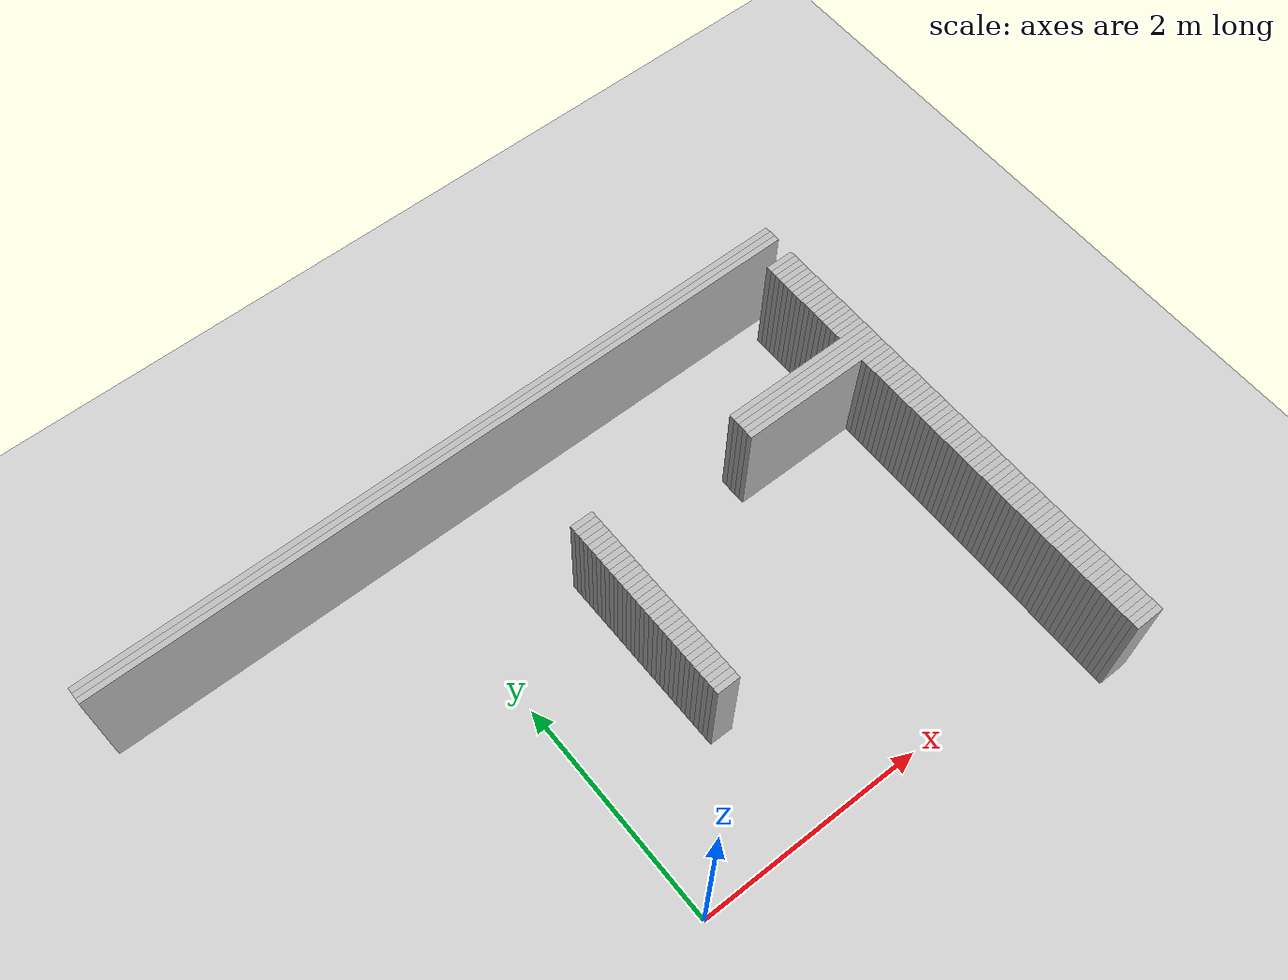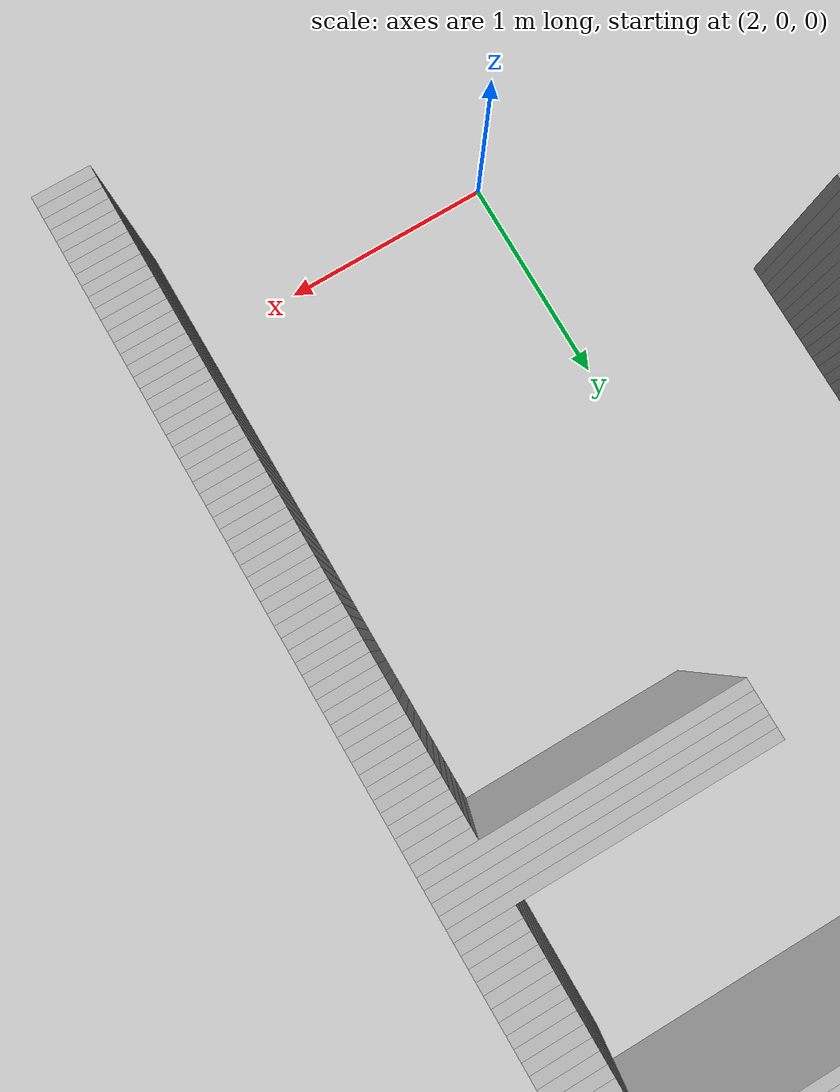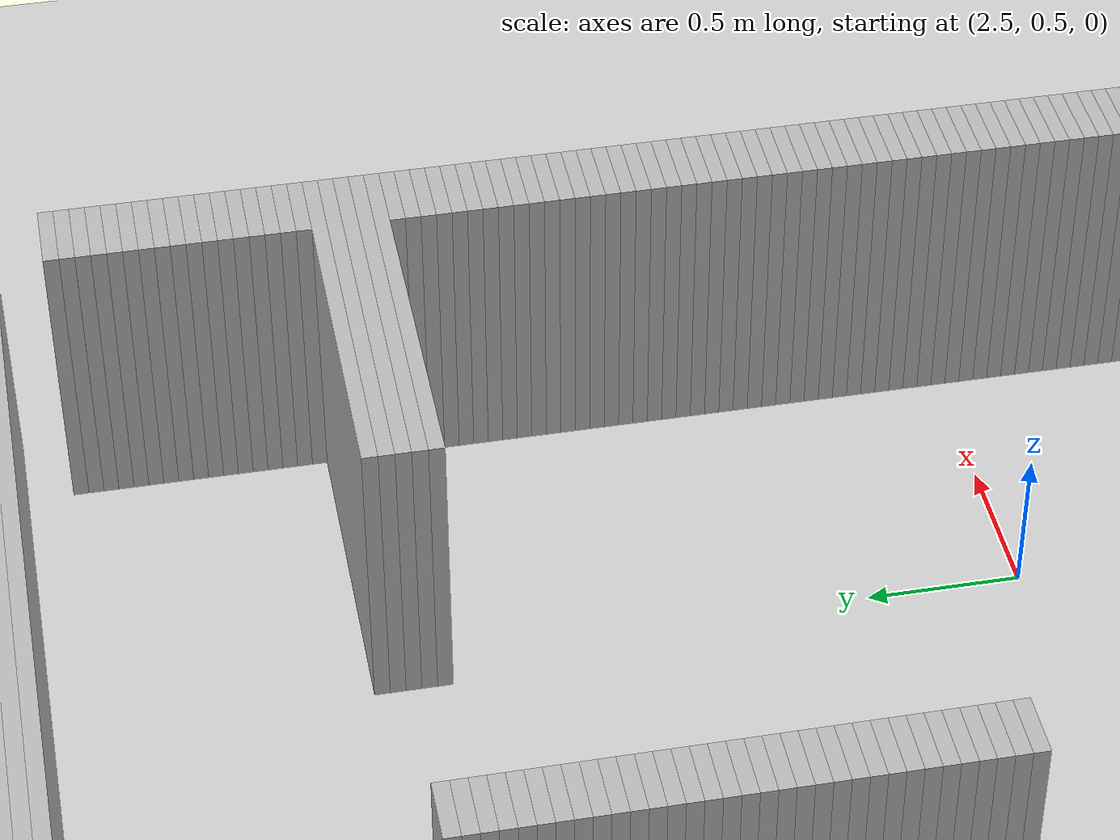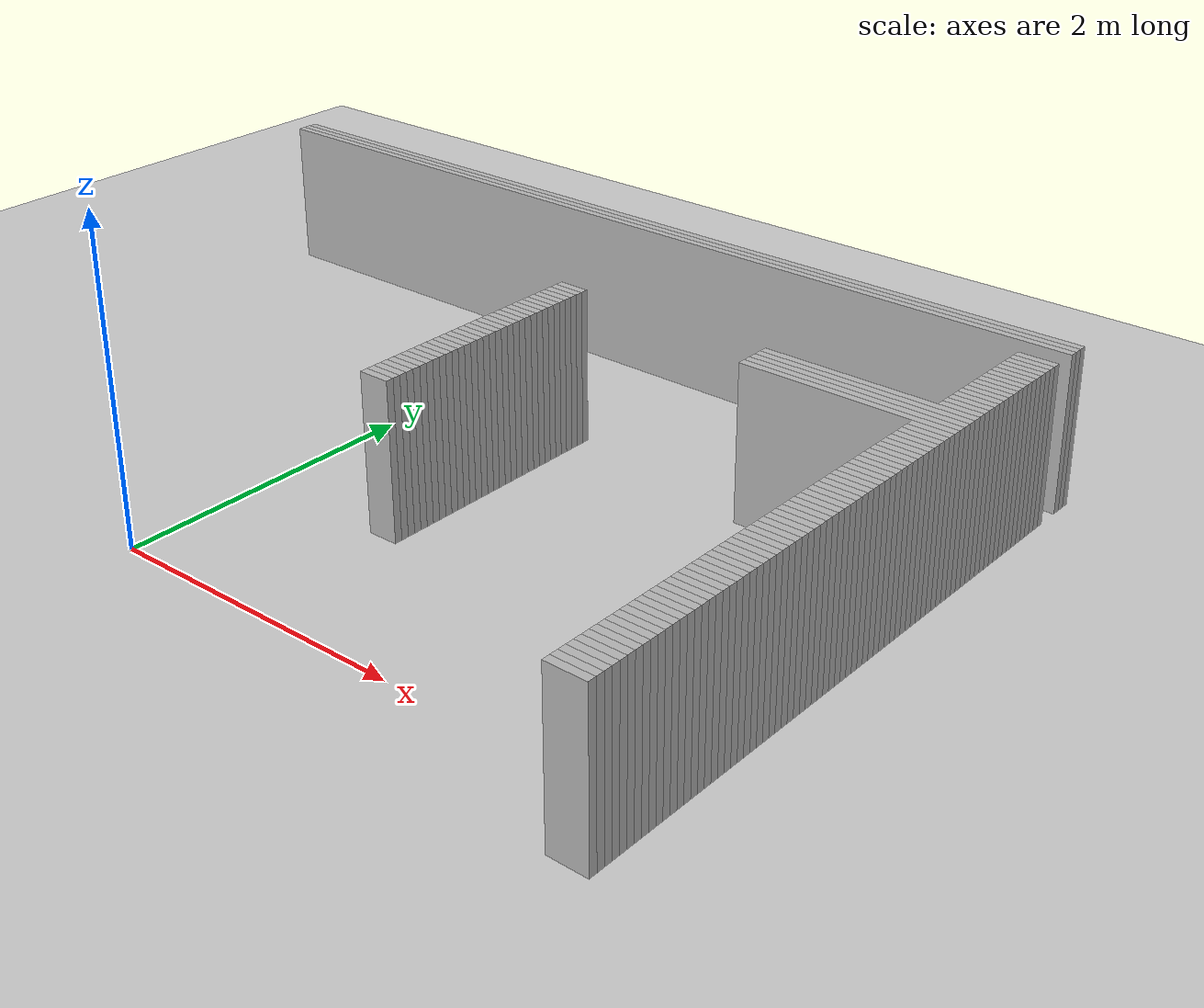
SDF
<sdf version="1.6">
 <world name="maze">
  <include><uri>model://ground_plane</uri></include>
  <include><uri>model://sun</uri></include>
  <model name="wall_24_0">
   <static>true</static>
   <pose>0.5750000000000001 3.75 0.5 0 0 0</pose>
   <link name="link">
    <collision name="collision">
     <geometry><box><size>6.300000000000001 0.05 1.0</size></box></geometry>
    </collision>
    <visual name="visual"><geometry><box><size>6.300000000000001 0.05 1.0</size></box></geometry></visual>
   </link>
  </model>
  <model name="wall_24_1">
   <static>true</static>
   <pose>0.5750000000000001 3.7 0.5 0 0 0</pose>
   <link name="link">
    <collision name="collision">
     <geometry><box><size>6.300000000000001 0.05 1.0</size></box></geometry>
    </collision>
    <visual name="visual"><geometry><box><size>6.300000000000001 0.05 1.0</size></box></geometry></visual>
   </link>
  </model>
  <model name="wall_24_2">
   <static>true</static>
   <pose>0.5750000000000001 3.6500000000000004 0.5 0 0 0</pose>
   <link name="link">
    <collision name="collision">
     <geometry><box><size>6.300000000000001 0.05 1.0</size></box></geometry>
    </collision>
    <visual name="visual"><geometry><box><size>6.300000000000001 0.05 1.0</size></box></geometry></visual>
   </link>
  </model>
  <model name="wall_145_6">
   <static>true</static>
   <pose>3.6 3.45 0.5 0 0 0</pose>
   <link name="link">
    <collision name="collision"><geometry><box><size>0.25 0.05 1.0</size></box></geometry></collision>
    <visual name="visual"><geometry><box><size>0.25 0.05 1.0</size></box></geometry></visual>
   </link>
  </model>
  <model name="wall_145_7">
   <static>true</static>
   <pose>3.6 3.4000000000000004 0.5 0 0 0</pose>
   <link name="link">
    <collision name="collision"><geometry><box><size>0.25 0.05 1.0</size></box></geometry></collision>
    <visual name="visual"><geometry><box><size>0.25 0.05 1.0</size></box></geometry></visual>
   </link>
  </model>
  <model name="wall_145_8">
   <static>true</static>
   <pose>3.6 3.35 0.5 0 0 0</pose>
   <link name="link">
    <collision name="collision"><geometry><box><size>0.25 0.05 1.0</size></box></geometry></collision>
    <visual name="visual"><geometry><box><size>0.25 0.05 1.0</size></box></geometry></visual>
   </link>
  </model>
  <model name="wall_145_9">
   <static>true</static>
   <pose>3.6 3.3000000000000003 0.5 0 0 0</pose>
   <link name="link">
    <collision name="collision"><geometry><box><size>0.25 0.05 1.0</size></box></geometry></collision>
    <visual name="visual"><geometry><box><size>0.25 0.05 1.0</size></box></geometry></visual>
   </link>
  </model>
  <model name="wall_145_10">
   <static>true</static>
   <pose>3.6 3.25 0.5 0 0 0</pose>
   <link name="link">
    <collision name="collision"><geometry><box><size>0.25 0.05 1.0</size></box></geometry></collision>
    <visual name="visual"><geometry><box><size>0.25 0.05 1.0</size></box></geometry></visual>
   </link>
  </model>
  <model name="wall_145_11">
   <static>true</static>
   <pose>3.6 3.2 0.5 0 0 0</pose>
   <link name="link">
    <collision name="collision"><geometry><box><size>0.25 0.05 1.0</size></box></geometry></collision>
    <visual name="visual"><geometry><box><size>0.25 0.05 1.0</size></box></geometry></visual>
   </link>
  </model>
  <model name="wall_145_12">
   <static>true</static>
   <pose>3.6 3.1500000000000004 0.5 0 0 0</pose>
   <link name="link">
    <collision name="collision"><geometry><box><size>0.25 0.05 1.0</size></box></geometry></collision>
    <visual name="visual"><geometry><box><size>0.25 0.05 1.0</size></box></geometry></visual>
   </link>
  </model>
  <model name="wall_145_13">
   <static>true</static>
   <pose>3.6 3.1 0.5 0 0 0</pose>
   <link name="link">
    <collision name="collision"><geometry><box><size>0.25 0.05 1.0</size></box></geometry></collision>
    <visual name="visual"><geometry><box><size>0.25 0.05 1.0</size></box></geometry></visual>
   </link>
  </model>
  <model name="wall_145_14">
   <static>true</static>
   <pose>3.6 3.0500000000000003 0.5 0 0 0</pose>
   <link name="link">
    <collision name="collision"><geometry><box><size>0.25 0.05 1.0</size></box></geometry></collision>
    <visual name="visual"><geometry><box><size>0.25 0.05 1.0</size></box></geometry></visual>
   </link>
  </model>
  <model name="wall_145_15">
   <static>true</static>
   <pose>3.6 3.0 0.5 0 0 0</pose>
   <link name="link">
    <collision name="collision"><geometry><box><size>0.25 0.05 1.0</size></box></geometry></collision>
    <visual name="visual"><geometry><box><size>0.25 0.05 1.0</size></box></geometry></visual>
   </link>
  </model>
  <model name="wall_145_16">
   <static>true</static>
   <pose>3.6 2.95 0.5 0 0 0</pose>
   <link name="link">
    <collision name="collision"><geometry><box><size>0.25 0.05 1.0</size></box></geometry></collision>
    <visual name="visual"><geometry><box><size>0.25 0.05 1.0</size></box></geometry></visual>
   </link>
  </model>
  <model name="wall_145_17">
   <static>true</static>
   <pose>3.6 2.9000000000000004 0.5 0 0 0</pose>
   <link name="link">
    <collision name="collision"><geometry><box><size>0.25 0.05 1.0</size></box></geometry></collision>
    <visual name="visual"><geometry><box><size>0.25 0.05 1.0</size></box></geometry></visual>
   </link>
  </model>
  <model name="wall_145_18">
   <static>true</static>
   <pose>3.6 2.85 0.5 0 0 0</pose>
   <link name="link">
    <collision name="collision"><geometry><box><size>0.25 0.05 1.0</size></box></geometry></collision>
    <visual name="visual"><geometry><box><size>0.25 0.05 1.0</size></box></geometry></visual>
   </link>
  </model>
  <model name="wall_145_19">
   <static>true</static>
   <pose>3.6 2.8000000000000003 0.5 0 0 0</pose>
   <link name="link">
    <collision name="collision"><geometry><box><size>0.25 0.05 1.0</size></box></geometry></collision>
    <visual name="visual"><geometry><box><size>0.25 0.05 1.0</size></box></geometry></visual>
   </link>
  </model>
  <model name="wall_145_20">
   <static>true</static>
   <pose>3.6 2.75 0.5 0 0 0</pose>
   <link name="link">
    <collision name="collision"><geometry><box><size>0.25 0.05 1.0</size></box></geometry></collision>
    <visual name="visual"><geometry><box><size>0.25 0.05 1.0</size></box></geometry></visual>
   </link>
  </model>
  <model name="wall_145_21">
   <static>true</static>
   <pose>3.6 2.7 0.5 0 0 0</pose>
   <link name="link">
    <collision name="collision"><geometry><box><size>0.25 0.05 1.0</size></box></geometry></collision>
    <visual name="visual"><geometry><box><size>0.25 0.05 1.0</size></box></geometry></visual>
   </link>
  </model>
  <model name="wall_145_22">
   <static>true</static>
   <pose>3.6 2.6500000000000004 0.5 0 0 0</pose>
   <link name="link">
    <collision name="collision"><geometry><box><size>0.25 0.05 1.0</size></box></geometry></collision>
    <visual name="visual"><geometry><box><size>0.25 0.05 1.0</size></box></geometry></visual>
   </link>
  </model>
  <model name="wall_93_23">
   <static>true</static>
   <pose>0.9750000000000001 2.6 0.5 0 0 0</pose>
   <link name="link">
    <collision name="collision"><geometry><box><size>0.2 0.05 1.0</size></box></geometry></collision>
    <visual name="visual"><geometry><box><size>0.2 0.05 1.0</size></box></geometry></visual>
   </link>
  </model>
  <model name="wall_123_23">
   <static>true</static>
   <pose>3.0500000000000003 2.6 0.5 0 0 0</pose>
   <link name="link">
    <collision name="collision"><geometry><box><size>1.35 0.05 1.0</size></box></geometry></collision>
    <visual name="visual"><geometry><box><size>1.35 0.05 1.0</size></box></geometry></visual>
   </link>
  </model>
  <model name="wall_93_24">
   <static>true</static>
   <pose>0.9750000000000001 2.5500000000000003 0.5 0 0 0</pose>
   <link name="link">
    <collision name="collision"><geometry><box><size>0.2 0.05 1.0</size></box></geometry></collision>
    <visual name="visual"><geometry><box><size>0.2 0.05 1.0</size></box></geometry></visual>
   </link>
  </model>
  <model name="wall_123_24">
   <static>true</static>
   <pose>3.0500000000000003 2.5500000000000003 0.5 0 0 0</pose>
   <link name="link">
    <collision name="collision"><geometry><box><size>1.35 0.05 1.0</size></box></geometry></collision>
    <visual name="visual"><geometry><box><size>1.35 0.05 1.0</size></box></geometry></visual>
   </link>
  </model>
  <model name="wall_93_25">
   <static>true</static>
   <pose>0.9750000000000001 2.5 0.5 0 0 0</pose>
   <link name="link">
    <collision name="collision"><geometry><box><size>0.2 0.05 1.0</size></box></geometry></collision>
    <visual name="visual"><geometry><box><size>0.2 0.05 1.0</size></box></geometry></visual>
   </link>
  </model>
  <model name="wall_123_25">
   <static>true</static>
   <pose>3.0500000000000003 2.5 0.5 0 0 0</pose>
   <link name="link">
    <collision name="collision"><geometry><box><size>1.35 0.05 1.0</size></box></geometry></collision>
    <visual name="visual"><geometry><box><size>1.35 0.05 1.0</size></box></geometry></visual>
   </link>
  </model>
  <model name="wall_93_26">
   <static>true</static>
   <pose>0.9750000000000001 2.45 0.5 0 0 0</pose>
   <link name="link">
    <collision name="collision"><geometry><box><size>0.2 0.05 1.0</size></box></geometry></collision>
    <visual name="visual"><geometry><box><size>0.2 0.05 1.0</size></box></geometry></visual>
   </link>
  </model>
  <model name="wall_123_26">
   <static>true</static>
   <pose>3.0500000000000003 2.45 0.5 0 0 0</pose>
   <link name="link">
    <collision name="collision"><geometry><box><size>1.35 0.05 1.0</size></box></geometry></collision>
    <visual name="visual"><geometry><box><size>1.35 0.05 1.0</size></box></geometry></visual>
   </link>
  </model>
  <model name="wall_93_27">
   <static>true</static>
   <pose>0.9750000000000001 2.4000000000000004 0.5 0 0 0</pose>
   <link name="link">
    <collision name="collision"><geometry><box><size>0.2 0.05 1.0</size></box></geometry></collision>
    <visual name="visual"><geometry><box><size>0.2 0.05 1.0</size></box></geometry></visual>
   </link>
  </model>
  <model name="wall_123_27">
   <static>true</static>
   <pose>3.0500000000000003 2.4000000000000004 0.5 0 0 0</pose>
   <link name="link">
    <collision name="collision"><geometry><box><size>1.35 0.05 1.0</size></box></geometry></collision>
    <visual name="visual"><geometry><box><size>1.35 0.05 1.0</size></box></geometry></visual>
   </link>
  </model>
  <model name="wall_93_28">
   <static>true</static>
   <pose>0.9750000000000001 2.35 0.5 0 0 0</pose>
   <link name="link">
    <collision name="collision"><geometry><box><size>0.2 0.05 1.0</size></box></geometry></collision>
    <visual name="visual"><geometry><box><size>0.2 0.05 1.0</size></box></geometry></visual>
   </link>
  </model>
  <model name="wall_145_28">
   <static>true</static>
   <pose>3.6 2.35 0.5 0 0 0</pose>
   <link name="link">
    <collision name="collision"><geometry><box><size>0.25 0.05 1.0</size></box></geometry></collision>
    <visual name="visual"><geometry><box><size>0.25 0.05 1.0</size></box></geometry></visual>
   </link>
  </model>
  <model name="wall_93_29">
   <static>true</static>
   <pose>0.9750000000000001 2.3000000000000003 0.5 0 0 0</pose>
   <link name="link">
    <collision name="collision"><geometry><box><size>0.2 0.05 1.0</size></box></geometry></collision>
    <visual name="visual"><geometry><box><size>0.2 0.05 1.0</size></box></geometry></visual>
   </link>
  </model>
  <model name="wall_145_29">
   <static>true</static>
   <pose>3.6 2.3000000000000003 0.5 0 0 0</pose>
   <link name="link">
    <collision name="collision"><geometry><box><size>0.25 0.05 1.0</size></box></geometry></collision>
    <visual name="visual"><geometry><box><size>0.25 0.05 1.0</size></box></geometry></visual>
   </link>
  </model>
  <model name="wall_93_30">
   <static>true</static>
   <pose>0.9750000000000001 2.25 0.5 0 0 0</pose>
   <link name="link">
    <collision name="collision"><geometry><box><size>0.2 0.05 1.0</size></box></geometry></collision>
    <visual name="visual"><geometry><box><size>0.2 0.05 1.0</size></box></geometry></visual>
   </link>
  </model>
  <model name="wall_145_30">
   <static>true</static>
   <pose>3.6 2.25 0.5 0 0 0</pose>
   <link name="link">
    <collision name="collision"><geometry><box><size>0.25 0.05 1.0</size></box></geometry></collision>
    <visual name="visual"><geometry><box><size>0.25 0.05 1.0</size></box></geometry></visual>
   </link>
  </model>
  <model name="wall_93_31">
   <static>true</static>
   <pose>0.9750000000000001 2.2 0.5 0 0 0</pose>
   <link name="link">
    <collision name="collision"><geometry><box><size>0.2 0.05 1.0</size></box></geometry></collision>
    <visual name="visual"><geometry><box><size>0.2 0.05 1.0</size></box></geometry></visual>
   </link>
  </model>
  <model name="wall_145_31">
   <static>true</static>
   <pose>3.6 2.2 0.5 0 0 0</pose>
   <link name="link">
    <collision name="collision"><geometry><box><size>0.25 0.05 1.0</size></box></geometry></collision>
    <visual name="visual"><geometry><box><size>0.25 0.05 1.0</size></box></geometry></visual>
   </link>
  </model>
  <model name="wall_93_32">
   <static>true</static>
   <pose>0.9750000000000001 2.15 0.5 0 0 0</pose>
   <link name="link">
    <collision name="collision"><geometry><box><size>0.2 0.05 1.0</size></box></geometry></collision>
    <visual name="visual"><geometry><box><size>0.2 0.05 1.0</size></box></geometry></visual>
   </link>
  </model>
  <model name="wall_145_32">
   <static>true</static>
   <pose>3.6 2.15 0.5 0 0 0</pose>
   <link name="link">
    <collision name="collision"><geometry><box><size>0.25 0.05 1.0</size></box></geometry></collision>
    <visual name="visual"><geometry><box><size>0.25 0.05 1.0</size></box></geometry></visual>
   </link>
  </model>
  <model name="wall_93_33">
   <static>true</static>
   <pose>0.9750000000000001 2.1 0.5 0 0 0</pose>
   <link name="link">
    <collision name="collision"><geometry><box><size>0.2 0.05 1.0</size></box></geometry></collision>
    <visual name="visual"><geometry><box><size>0.2 0.05 1.0</size></box></geometry></visual>
   </link>
  </model>
  <model name="wall_145_33">
   <static>true</static>
   <pose>3.6 2.1 0.5 0 0 0</pose>
   <link name="link">
    <collision name="collision"><geometry><box><size>0.25 0.05 1.0</size></box></geometry></collision>
    <visual name="visual"><geometry><box><size>0.25 0.05 1.0</size></box></geometry></visual>
   </link>
  </model>
  <model name="wall_93_34">
   <static>true</static>
   <pose>0.9750000000000001 2.0500000000000003 0.5 0 0 0</pose>
   <link name="link">
    <collision name="collision"><geometry><box><size>0.2 0.05 1.0</size></box></geometry></collision>
    <visual name="visual"><geometry><box><size>0.2 0.05 1.0</size></box></geometry></visual>
   </link>
  </model>
  <model name="wall_145_34">
   <static>true</static>
   <pose>3.6 2.0500000000000003 0.5 0 0 0</pose>
   <link name="link">
    <collision name="collision"><geometry><box><size>0.25 0.05 1.0</size></box></geometry></collision>
    <visual name="visual"><geometry><box><size>0.25 0.05 1.0</size></box></geometry></visual>
   </link>
  </model>
  <model name="wall_93_35">
   <static>true</static>
   <pose>0.9750000000000001 2.0 0.5 0 0 0</pose>
   <link name="link">
    <collision name="collision"><geometry><box><size>0.2 0.05 1.0</size></box></geometry></collision>
    <visual name="visual"><geometry><box><size>0.2 0.05 1.0</size></box></geometry></visual>
   </link>
  </model>
  <model name="wall_145_35">
   <static>true</static>
   <pose>3.6 2.0 0.5 0 0 0</pose>
   <link name="link">
    <collision name="collision"><geometry><box><size>0.25 0.05 1.0</size></box></geometry></collision>
    <visual name="visual"><geometry><box><size>0.25 0.05 1.0</size></box></geometry></visual>
   </link>
  </model>
  <model name="wall_93_36">
   <static>true</static>
   <pose>0.9750000000000001 1.9500000000000002 0.5 0 0 0</pose>
   <link name="link">
    <collision name="collision"><geometry><box><size>0.2 0.05 1.0</size></box></geometry></collision>
    <visual name="visual"><geometry><box><size>0.2 0.05 1.0</size></box></geometry></visual>
   </link>
  </model>
  <model name="wall_145_36">
   <static>true</static>
   <pose>3.6 1.9500000000000002 0.5 0 0 0</pose>
   <link name="link">
    <collision name="collision"><geometry><box><size>0.25 0.05 1.0</size></box></geometry></collision>
    <visual name="visual"><geometry><box><size>0.25 0.05 1.0</size></box></geometry></visual>
   </link>
  </model>
  <model name="wall_93_37">
   <static>true</static>
   <pose>0.9750000000000001 1.9000000000000001 0.5 0 0 0</pose>
   <link name="link">
    <collision name="collision"><geometry><box><size>0.2 0.05 1.0</size></box></geometry></collision>
    <visual name="visual"><geometry><box><size>0.2 0.05 1.0</size></box></geometry></visual>
   </link>
  </model>
  <model name="wall_145_37">
   <static>true</static>
   <pose>3.6 1.9000000000000001 0.5 0 0 0</pose>
   <link name="link">
    <collision name="collision"><geometry><box><size>0.25 0.05 1.0</size></box></geometry></collision>
    <visual name="visual"><geometry><box><size>0.25 0.05 1.0</size></box></geometry></visual>
   </link>
  </model>
  <model name="wall_93_38">
   <static>true</static>
   <pose>0.9750000000000001 1.85 0.5 0 0 0</pose>
   <link name="link">
    <collision name="collision"><geometry><box><size>0.2 0.05 1.0</size></box></geometry></collision>
    <visual name="visual"><geometry><box><size>0.2 0.05 1.0</size></box></geometry></visual>
   </link>
  </model>
  <model name="wall_145_38">
   <static>true</static>
   <pose>3.6 1.85 0.5 0 0 0</pose>
   <link name="link">
    <collision name="collision"><geometry><box><size>0.25 0.05 1.0</size></box></geometry></collision>
    <visual name="visual"><geometry><box><size>0.25 0.05 1.0</size></box></geometry></visual>
   </link>
  </model>
  <model name="wall_93_39">
   <static>true</static>
   <pose>0.9750000000000001 1.8 0.5 0 0 0</pose>
   <link name="link">
    <collision name="collision"><geometry><box><size>0.2 0.05 1.0</size></box></geometry></collision>
    <visual name="visual"><geometry><box><size>0.2 0.05 1.0</size></box></geometry></visual>
   </link>
  </model>
  <model name="wall_145_39">
   <static>true</static>
   <pose>3.6 1.8 0.5 0 0 0</pose>
   <link name="link">
    <collision name="collision"><geometry><box><size>0.25 0.05 1.0</size></box></geometry></collision>
    <visual name="visual"><geometry><box><size>0.25 0.05 1.0</size></box></geometry></visual>
   </link>
  </model>
  <model name="wall_93_40">
   <static>true</static>
   <pose>0.9750000000000001 1.75 0.5 0 0 0</pose>
   <link name="link">
    <collision name="collision"><geometry><box><size>0.2 0.05 1.0</size></box></geometry></collision>
    <visual name="visual"><geometry><box><size>0.2 0.05 1.0</size></box></geometry></visual>
   </link>
  </model>
  <model name="wall_145_40">
   <static>true</static>
   <pose>3.6 1.75 0.5 0 0 0</pose>
   <link name="link">
    <collision name="collision"><geometry><box><size>0.25 0.05 1.0</size></box></geometry></collision>
    <visual name="visual"><geometry><box><size>0.25 0.05 1.0</size></box></geometry></visual>
   </link>
  </model>
  <model name="wall_93_41">
   <static>true</static>
   <pose>0.9750000000000001 1.7000000000000002 0.5 0 0 0</pose>
   <link name="link">
    <collision name="collision"><geometry><box><size>0.2 0.05 1.0</size></box></geometry></collision>
    <visual name="visual"><geometry><box><size>0.2 0.05 1.0</size></box></geometry></visual>
   </link>
  </model>
  <model name="wall_145_41">
   <static>true</static>
   <pose>3.6 1.7000000000000002 0.5 0 0 0</pose>
   <link name="link">
    <collision name="collision"><geometry><box><size>0.25 0.05 1.0</size></box></geometry></collision>
    <visual name="visual"><geometry><box><size>0.25 0.05 1.0</size></box></geometry></visual>
   </link>
  </model>
  <model name="wall_93_42">
   <static>true</static>
   <pose>0.9750000000000001 1.6500000000000001 0.5 0 0 0</pose>
   <link name="link">
    <collision name="collision"><geometry><box><size>0.2 0.05 1.0</size></box></geometry></collision>
    <visual name="visual"><geometry><box><size>0.2 0.05 1.0</size></box></geometry></visual>
   </link>
  </model>
  <model name="wall_145_42">
   <static>true</static>
   <pose>3.6 1.6500000000000001 0.5 0 0 0</pose>
   <link name="link">
    <collision name="collision"><geometry><box><size>0.25 0.05 1.0</size></box></geometry></collision>
    <visual name="visual"><geometry><box><size>0.25 0.05 1.0</size></box></geometry></visual>
   </link>
  </model>
  <model name="wall_93_43">
   <static>true</static>
   <pose>0.9750000000000001 1.6 0.5 0 0 0</pose>
   <link name="link">
    <collision name="collision"><geometry><box><size>0.2 0.05 1.0</size></box></geometry></collision>
    <visual name="visual"><geometry><box><size>0.2 0.05 1.0</size></box></geometry></visual>
   </link>
  </model>
  <model name="wall_145_43">
   <static>true</static>
   <pose>3.6 1.6 0.5 0 0 0</pose>
   <link name="link">
    <collision name="collision"><geometry><box><size>0.25 0.05 1.0</size></box></geometry></collision>
    <visual name="visual"><geometry><box><size>0.25 0.05 1.0</size></box></geometry></visual>
   </link>
  </model>
  <model name="wall_93_44">
   <static>true</static>
   <pose>0.9750000000000001 1.55 0.5 0 0 0</pose>
   <link name="link">
    <collision name="collision"><geometry><box><size>0.2 0.05 1.0</size></box></geometry></collision>
    <visual name="visual"><geometry><box><size>0.2 0.05 1.0</size></box></geometry></visual>
   </link>
  </model>
  <model name="wall_145_44">
   <static>true</static>
   <pose>3.6 1.55 0.5 0 0 0</pose>
   <link name="link">
    <collision name="collision"><geometry><box><size>0.25 0.05 1.0</size></box></geometry></collision>
    <visual name="visual"><geometry><box><size>0.25 0.05 1.0</size></box></geometry></visual>
   </link>
  </model>
  <model name="wall_93_45">
   <static>true</static>
   <pose>0.9750000000000001 1.5 0.5 0 0 0</pose>
   <link name="link">
    <collision name="collision"><geometry><box><size>0.2 0.05 1.0</size></box></geometry></collision>
    <visual name="visual"><geometry><box><size>0.2 0.05 1.0</size></box></geometry></visual>
   </link>
  </model>
  <model name="wall_145_45">
   <static>true</static>
   <pose>3.6 1.5 0.5 0 0 0</pose>
   <link name="link">
    <collision name="collision"><geometry><box><size>0.25 0.05 1.0</size></box></geometry></collision>
    <visual name="visual"><geometry><box><size>0.25 0.05 1.0</size></box></geometry></visual>
   </link>
  </model>
  <model name="wall_93_46">
   <static>true</static>
   <pose>0.9750000000000001 1.4500000000000002 0.5 0 0 0</pose>
   <link name="link">
    <collision name="collision"><geometry><box><size>0.2 0.05 1.0</size></box></geometry></collision>
    <visual name="visual"><geometry><box><size>0.2 0.05 1.0</size></box></geometry></visual>
   </link>
  </model>
  <model name="wall_145_46">
   <static>true</static>
   <pose>3.6 1.4500000000000002 0.5 0 0 0</pose>
   <link name="link">
    <collision name="collision"><geometry><box><size>0.25 0.05 1.0</size></box></geometry></collision>
    <visual name="visual"><geometry><box><size>0.25 0.05 1.0</size></box></geometry></visual>
   </link>
  </model>
  <model name="wall_93_47">
   <static>true</static>
   <pose>0.9750000000000001 1.4000000000000001 0.5 0 0 0</pose>
   <link name="link">
    <collision name="collision"><geometry><box><size>0.2 0.05 1.0</size></box></geometry></collision>
    <visual name="visual"><geometry><box><size>0.2 0.05 1.0</size></box></geometry></visual>
   </link>
  </model>
  <model name="wall_145_47">
   <static>true</static>
   <pose>3.6 1.4000000000000001 0.5 0 0 0</pose>
   <link name="link">
    <collision name="collision"><geometry><box><size>0.25 0.05 1.0</size></box></geometry></collision>
    <visual name="visual"><geometry><box><size>0.25 0.05 1.0</size></box></geometry></visual>
   </link>
  </model>
  <model name="wall_93_48">
   <static>true</static>
   <pose>0.9750000000000001 1.35 0.5 0 0 0</pose>
   <link name="link">
    <collision name="collision"><geometry><box><size>0.2 0.05 1.0</size></box></geometry></collision>
    <visual name="visual"><geometry><box><size>0.2 0.05 1.0</size></box></geometry></visual>
   </link>
  </model>
  <model name="wall_145_48">
   <static>true</static>
   <pose>3.6 1.35 0.5 0 0 0</pose>
   <link name="link">
    <collision name="collision"><geometry><box><size>0.25 0.05 1.0</size></box></geometry></collision>
    <visual name="visual"><geometry><box><size>0.25 0.05 1.0</size></box></geometry></visual>
   </link>
  </model>
  <model name="wall_93_49">
   <static>true</static>
   <pose>0.9750000000000001 1.3 0.5 0 0 0</pose>
   <link name="link">
    <collision name="collision"><geometry><box><size>0.2 0.05 1.0</size></box></geometry></collision>
    <visual name="visual"><geometry><box><size>0.2 0.05 1.0</size></box></geometry></visual>
   </link>
  </model>
  <model name="wall_145_49">
   <static>true</static>
   <pose>3.6 1.3 0.5 0 0 0</pose>
   <link name="link">
    <collision name="collision"><geometry><box><size>0.25 0.05 1.0</size></box></geometry></collision>
    <visual name="visual"><geometry><box><size>0.25 0.05 1.0</size></box></geometry></visual>
   </link>
  </model>
  <model name="wall_93_50">
   <static>true</static>
   <pose>0.9750000000000001 1.25 0.5 0 0 0</pose>
   <link name="link">
    <collision name="collision"><geometry><box><size>0.2 0.05 1.0</size></box></geometry></collision>
    <visual name="visual"><geometry><box><size>0.2 0.05 1.0</size></box></geometry></visual>
   </link>
  </model>
  <model name="wall_145_50">
   <static>true</static>
   <pose>3.6 1.25 0.5 0 0 0</pose>
   <link name="link">
    <collision name="collision"><geometry><box><size>0.25 0.05 1.0</size></box></geometry></collision>
    <visual name="visual"><geometry><box><size>0.25 0.05 1.0</size></box></geometry></visual>
   </link>
  </model>
  <model name="wall_93_51">
   <static>true</static>
   <pose>0.9750000000000001 1.2000000000000002 0.5 0 0 0</pose>
   <link name="link">
    <collision name="collision"><geometry><box><size>0.2 0.05 1.0</size></box></geometry></collision>
    <visual name="visual"><geometry><box><size>0.2 0.05 1.0</size></box></geometry></visual>
   </link>
  </model>
  <model name="wall_145_51">
   <static>true</static>
   <pose>3.6 1.2000000000000002 0.5 0 0 0</pose>
   <link name="link">
    <collision name="collision"><geometry><box><size>0.25 0.05 1.0</size></box></geometry></collision>
    <visual name="visual"><geometry><box><size>0.25 0.05 1.0</size></box></geometry></visual>
   </link>
  </model>
  <model name="wall_93_52">
   <static>true</static>
   <pose>0.9750000000000001 1.1500000000000001 0.5 0 0 0</pose>
   <link name="link">
    <collision name="collision"><geometry><box><size>0.2 0.05 1.0</size></box></geometry></collision>
    <visual name="visual"><geometry><box><size>0.2 0.05 1.0</size></box></geometry></visual>
   </link>
  </model>
  <model name="wall_145_52">
   <static>true</static>
   <pose>3.6 1.1500000000000001 0.5 0 0 0</pose>
   <link name="link">
    <collision name="collision"><geometry><box><size>0.25 0.05 1.0</size></box></geometry></collision>
    <visual name="visual"><geometry><box><size>0.25 0.05 1.0</size></box></geometry></visual>
   </link>
  </model>
  <model name="wall_93_53">
   <static>true</static>
   <pose>0.9750000000000001 1.1 0.5 0 0 0</pose>
   <link name="link">
    <collision name="collision"><geometry><box><size>0.2 0.05 1.0</size></box></geometry></collision>
    <visual name="visual"><geometry><box><size>0.2 0.05 1.0</size></box></geometry></visual>
   </link>
  </model>
  <model name="wall_145_53">
   <static>true</static>
   <pose>3.6 1.1 0.5 0 0 0</pose>
   <link name="link">
    <collision name="collision"><geometry><box><size>0.25 0.05 1.0</size></box></geometry></collision>
    <visual name="visual"><geometry><box><size>0.25 0.05 1.0</size></box></geometry></visual>
   </link>
  </model>
  <model name="wall_93_54">
   <static>true</static>
   <pose>0.9750000000000001 1.05 0.5 0 0 0</pose>
   <link name="link">
    <collision name="collision"><geometry><box><size>0.2 0.05 1.0</size></box></geometry></collision>
    <visual name="visual"><geometry><box><size>0.2 0.05 1.0</size></box></geometry></visual>
   </link>
  </model>
  <model name="wall_145_54">
   <static>true</static>
   <pose>3.6 1.05 0.5 0 0 0</pose>
   <link name="link">
    <collision name="collision"><geometry><box><size>0.25 0.05 1.0</size></box></geometry></collision>
    <visual name="visual"><geometry><box><size>0.25 0.05 1.0</size></box></geometry></visual>
   </link>
  </model>
  <model name="wall_93_55">
   <static>true</static>
   <pose>0.9750000000000001 1.0 0.5 0 0 0</pose>
   <link name="link">
    <collision name="collision"><geometry><box><size>0.2 0.05 1.0</size></box></geometry></collision>
    <visual name="visual"><geometry><box><size>0.2 0.05 1.0</size></box></geometry></visual>
   </link>
  </model>
  <model name="wall_145_55">
   <static>true</static>
   <pose>3.6 1.0 0.5 0 0 0</pose>
   <link name="link">
    <collision name="collision"><geometry><box><size>0.25 0.05 1.0</size></box></geometry></collision>
    <visual name="visual"><geometry><box><size>0.25 0.05 1.0</size></box></geometry></visual>
   </link>
  </model>
  <model name="wall_145_56">
   <static>true</static>
   <pose>3.6 0.9500000000000001 0.5 0 0 0</pose>
   <link name="link">
    <collision name="collision"><geometry><box><size>0.25 0.05 1.0</size></box></geometry></collision>
    <visual name="visual"><geometry><box><size>0.25 0.05 1.0</size></box></geometry></visual>
   </link>
  </model>
  <model name="wall_145_57">
   <static>true</static>
   <pose>3.6 0.9 0.5 0 0 0</pose>
   <link name="link">
    <collision name="collision"><geometry><box><size>0.25 0.05 1.0</size></box></geometry></collision>
    <visual name="visual"><geometry><box><size>0.25 0.05 1.0</size></box></geometry></visual>
   </link>
  </model>
  <model name="wall_145_58">
   <static>true</static>
   <pose>3.6 0.8500000000000001 0.5 0 0 0</pose>
   <link name="link">
    <collision name="collision"><geometry><box><size>0.25 0.05 1.0</size></box></geometry></collision>
    <visual name="visual"><geometry><box><size>0.25 0.05 1.0</size></box></geometry></visual>
   </link>
  </model>
  <model name="wall_145_59">
   <static>true</static>
   <pose>3.6 0.8 0.5 0 0 0</pose>
   <link name="link">
    <collision name="collision"><geometry><box><size>0.25 0.05 1.0</size></box></geometry></collision>
    <visual name="visual"><geometry><box><size>0.25 0.05 1.0</size></box></geometry></visual>
   </link>
  </model>
  <model name="wall_145_60">
   <static>true</static>
   <pose>3.6 0.75 0.5 0 0 0</pose>
   <link name="link">
    <collision name="collision"><geometry><box><size>0.25 0.05 1.0</size></box></geometry></collision>
    <visual name="visual"><geometry><box><size>0.25 0.05 1.0</size></box></geometry></visual>
   </link>
  </model>
  <model name="wall_145_61">
   <static>true</static>
   <pose>3.6 0.7000000000000001 0.5 0 0 0</pose>
   <link name="link">
    <collision name="collision"><geometry><box><size>0.25 0.05 1.0</size></box></geometry></collision>
    <visual name="visual"><geometry><box><size>0.25 0.05 1.0</size></box></geometry></visual>
   </link>
  </model>
  <model name="wall_145_62">
   <static>true</static>
   <pose>3.6 0.65 0.5 0 0 0</pose>
   <link name="link">
    <collision name="collision"><geometry><box><size>0.25 0.05 1.0</size></box></geometry></collision>
    <visual name="visual"><geometry><box><size>0.25 0.05 1.0</size></box></geometry></visual>
   </link>
  </model>
  <model name="wall_145_63">
   <static>true</static>
   <pose>3.6 0.6000000000000001 0.5 0 0 0</pose>
   <link name="link">
    <collision name="collision"><geometry><box><size>0.25 0.05 1.0</size></box></geometry></collision>
    <visual name="visual"><geometry><box><size>0.25 0.05 1.0</size></box></geometry></visual>
   </link>
  </model>
  <model name="wall_145_64">
   <static>true</static>
   <pose>3.6 0.55 0.5 0 0 0</pose>
   <link name="link">
    <collision name="collision"><geometry><box><size>0.25 0.05 1.0</size></box></geometry></collision>
    <visual name="visual"><geometry><box><size>0.25 0.05 1.0</size></box></geometry></visual>
   </link>
  </model>
  <model name="wall_145_65">
   <static>true</static>
   <pose>3.6 0.5 0.5 0 0 0</pose>
   <link name="link">
    <collision name="collision"><geometry><box><size>0.25 0.05 1.0</size></box></geometry></collision>
    <visual name="visual"><geometry><box><size>0.25 0.05 1.0</size></box></geometry></visual>
   </link>
  </model>
  <model name="wall_145_66">
   <static>true</static>
   <pose>3.6 0.45 0.5 0 0 0</pose>
   <link name="link">
    <collision name="collision"><geometry><box><size>0.25 0.05 1.0</size></box></geometry></collision>
    <visual name="visual"><geometry><box><size>0.25 0.05 1.0</size></box></geometry></visual>
   </link>
  </model>
  <model name="wall_145_67">
   <static>true</static>
   <pose>3.6 0.4 0.5 0 0 0</pose>
   <link name="link">
    <collision name="collision"><geometry><box><size>0.25 0.05 1.0</size></box></geometry></collision>
    <visual name="visual"><geometry><box><size>0.25 0.05 1.0</size></box></geometry></visual>
   </link>
  </model>
  <model name="wall_145_68">
   <static>true</static>
   <pose>3.6 0.35000000000000003 0.5 0 0 0</pose>
   <link name="link">
    <collision name="collision"><geometry><box><size>0.25 0.05 1.0</size></box></geometry></collision>
    <visual name="visual"><geometry><box><size>0.25 0.05 1.0</size></box></geometry></visual>
   </link>
  </model>
  <model name="wall_145_69">
   <static>true</static>
   <pose>3.6 0.30000000000000004 0.5 0 0 0</pose>
   <link name="link">
    <collision name="collision"><geometry><box><size>0.25 0.05 1.0</size></box></geometry></collision>
    <visual name="visual"><geometry><box><size>0.25 0.05 1.0</size></box></geometry></visual>
   </link>
  </model>
  <model name="wall_145_70">
   <static>true</static>
   <pose>3.6 0.25 0.5 0 0 0</pose>
   <link name="link">
    <collision name="collision"><geometry><box><size>0.25 0.05 1.0</size></box></geometry></collision>
    <visual name="visual"><geometry><box><size>0.25 0.05 1.0</size></box></geometry></visual>
   </link>
  </model>
  <model name="wall_145_71">
   <static>true</static>
   <pose>3.6 0.2 0.5 0 0 0</pose>
   <link name="link">
    <collision name="collision"><geometry><box><size>0.25 0.05 1.0</size></box></geometry></collision>
    <visual name="visual"><geometry><box><size>0.25 0.05 1.0</size></box></geometry></visual>
   </link>
  </model>
  <model name="wall_145_72">
   <static>true</static>
   <pose>3.6 0.15000000000000002 0.5 0 0 0</pose>
   <link name="link">
    <collision name="collision"><geometry><box><size>0.25 0.05 1.0</size></box></geometry></collision>
    <visual name="visual"><geometry><box><size>0.25 0.05 1.0</size></box></geometry></visual>
   </link>
  </model>
  <model name="wall_145_73">
   <static>true</static>
   <pose>3.6 0.1 0.5 0 0 0</pose>
   <link name="link">
    <collision name="collision"><geometry><box><size>0.25 0.05 1.0</size></box></geometry></collision>
    <visual name="visual"><geometry><box><size>0.25 0.05 1.0</size></box></geometry></visual>
   </link>
  </model>
  <model name="wall_145_74">
   <static>true</static>
   <pose>3.6 0.05 0.5 0 0 0</pose>
   <link name="link">
    <collision name="collision"><geometry><box><size>0.25 0.05 1.0</size></box></geometry></collision>
    <visual name="visual"><geometry><box><size>0.25 0.05 1.0</size></box></geometry></visual>
   </link>
  </model>
  <model name="wall_145_75">
   <static>true</static>
   <pose>3.6 0.0 0.5 0 0 0</pose>
   <link name="link">
    <collision name="collision"><geometry><box><size>0.25 0.05 1.0</size></box></geometry></collision>
    <visual name="visual"><geometry><box><size>0.25 0.05 1.0</size></box></geometry></visual>
   </link>
  </model>
  <model name="wall_145_76">
   <static>true</static>
   <pose>3.6 -0.05 0.5 0 0 0</pose>
   <link name="link">
    <collision name="collision"><geometry><box><size>0.25 0.05 1.0</size></box></geometry></collision>
    <visual name="visual"><geometry><box><size>0.25 0.05 1.0</size></box></geometry></visual>
   </link>
  </model>
  <model name="wall_145_77">
   <static>true</static>
   <pose>3.6 -0.1 0.5 0 0 0</pose>
   <link name="link">
    <collision name="collision"><geometry><box><size>0.25 0.05 1.0</size></box></geometry></collision>
    <visual name="visual"><geometry><box><size>0.25 0.05 1.0</size></box></geometry></visual>
   </link>
  </model>
  <model name="wall_145_78">
   <static>true</static>
   <pose>3.6 -0.15000000000000002 0.5 0 0 0</pose>
   <link name="link">
    <collision name="collision"><geometry><box><size>0.25 0.05 1.0</size></box></geometry></collision>
    <visual name="visual"><geometry><box><size>0.25 0.05 1.0</size></box></geometry></visual>
   </link>
  </model>
  <model name="wall_145_79">
   <static>true</static>
   <pose>3.6 -0.2 0.5 0 0 0</pose>
   <link name="link">
    <collision name="collision"><geometry><box><size>0.25 0.05 1.0</size></box></geometry></collision>
    <visual name="visual"><geometry><box><size>0.25 0.05 1.0</size></box></geometry></visual>
   </link>
  </model>
  <model name="wall_145_80">
   <static>true</static>
   <pose>3.6 -0.25 0.5 0 0 0</pose>
   <link name="link">
    <collision name="collision"><geometry><box><size>0.25 0.05 1.0</size></box></geometry></collision>
    <visual name="visual"><geometry><box><size>0.25 0.05 1.0</size></box></geometry></visual>
   </link>
  </model>
  <model name="wall_145_81">
   <static>true</static>
   <pose>3.6 -0.30000000000000004 0.5 0 0 0</pose>
   <link name="link">
    <collision name="collision"><geometry><box><size>0.25 0.05 1.0</size></box></geometry></collision>
    <visual name="visual"><geometry><box><size>0.25 0.05 1.0</size></box></geometry></visual>
   </link>
  </model>
  <model name="wall_145_82">
   <static>true</static>
   <pose>3.6 -0.35000000000000003 0.5 0 0 0</pose>
   <link name="link">
    <collision name="collision"><geometry><box><size>0.25 0.05 1.0</size></box></geometry></collision>
    <visual name="visual"><geometry><box><size>0.25 0.05 1.0</size></box></geometry></visual>
   </link>
  </model>
  <model name="wall_145_83">
   <static>true</static>
   <pose>3.6 -0.4 0.5 0 0 0</pose>
   <link name="link">
    <collision name="collision"><geometry><box><size>0.25 0.05 1.0</size></box></geometry></collision>
    <visual name="visual"><geometry><box><size>0.25 0.05 1.0</size></box></geometry></visual>
   </link>
  </model>
  <model name="wall_145_84">
   <static>true</static>
   <pose>3.6 -0.45 0.5 0 0 0</pose>
   <link name="link">
    <collision name="collision"><geometry><box><size>0.25 0.05 1.0</size></box></geometry></collision>
    <visual name="visual"><geometry><box><size>0.25 0.05 1.0</size></box></geometry></visual>
   </link>
  </model>
 </world>
</sdf>
